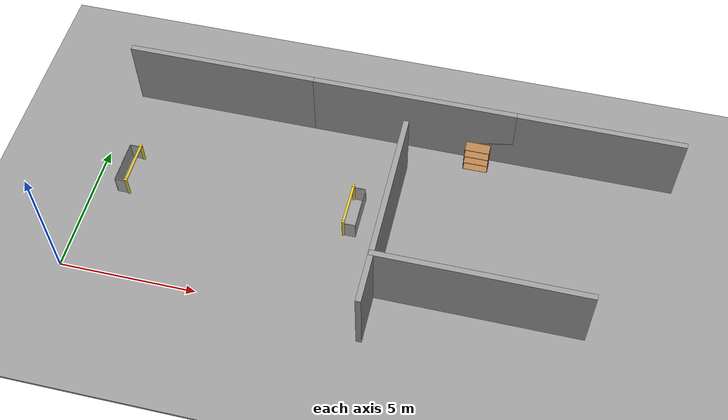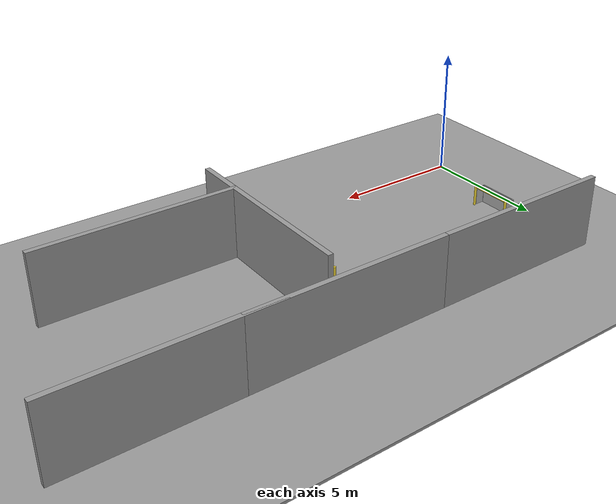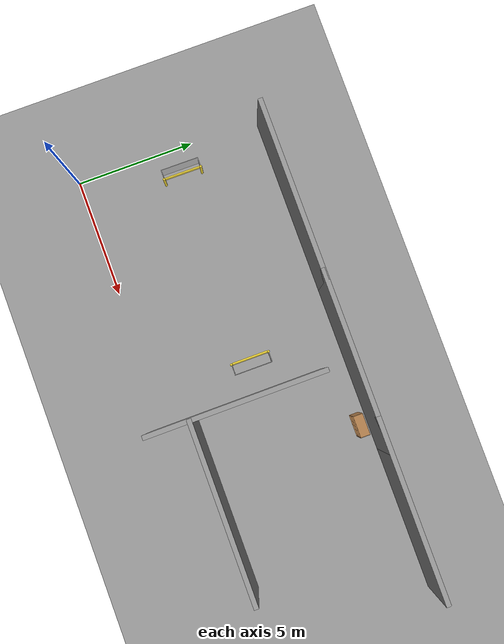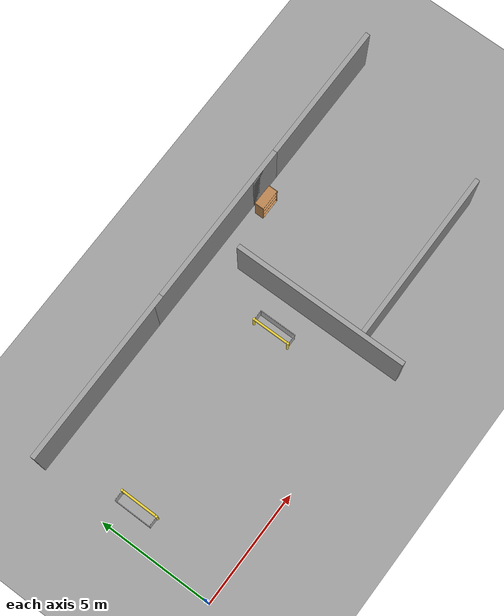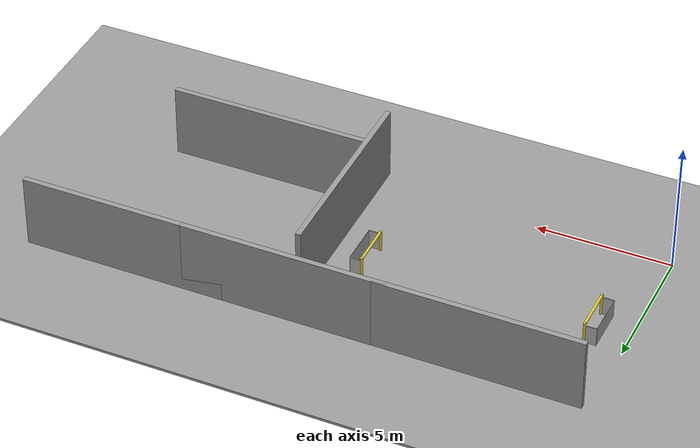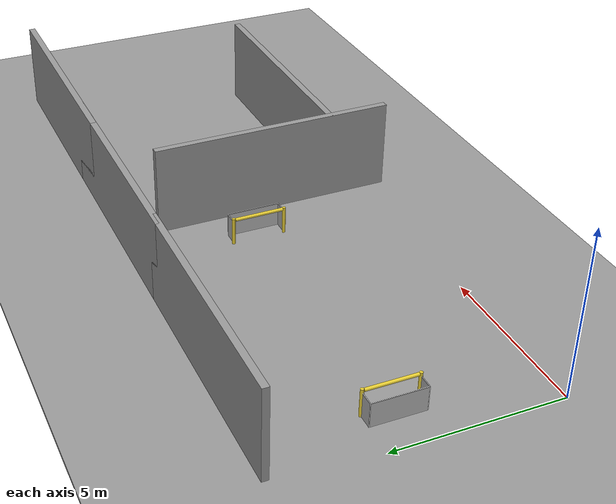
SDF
<sdf version="1.7">
 <world name="default">
  <light name="sun" type="directional">
   <pose>0 0 10 0 -0 0</pose>
   <diffuse>0.8 0.8 0.8 1</diffuse>
   <specular>0.2 0.2 0.2 1</specular>
   <attenuation>
    <range>1000</range>
    <constant>0.9</constant>
    <linear>0.01</linear>
    <quadratic>0.001</quadratic>
   </attenuation>
   <direction>-0.5 0.1 -0.9</direction>
   <spot><inner_angle>0</inner_angle><outer_angle>0</outer_angle><falloff>0</falloff></spot>
  </light>
  <model name="ground_plane">
   <static>1</static>
   <link name="link">
    <collision name="collision">
     <geometry><plane><normal>0 0 1</normal><size>100 100</size></plane></geometry>
     <surface><friction><ode><mu>100</mu><mu2>50</mu2></ode></friction></surface>
    </collision>
    <visual name="visual">
     <cast_shadows>0</cast_shadows>
     <geometry><plane><normal>0 0 1</normal><size>100 100</size></plane></geometry>
     <material>
      <script><uri>file://media/materials/scripts/gazebo.material</uri><name>Gazebo/Grey</name></script>
     </material>
    </visual>
   </link>
  </model>
  <gravity>0 0 -9.8</gravity>
  <magnetic_field>6e-06 2.3e-05 -4.2e-05</magnetic_field>
  <atmosphere type="adiabatic"/>
  <physics type="ode">
   <max_step_size>0.001</max_step_size>
   <real_time_factor>1</real_time_factor>
   <real_time_update_rate>1000</real_time_update_rate>
  </physics>
  <scene><ambient>0.4 0.4 0.4 1</ambient><background>0.7 0.7 0.7 1</background><shadows>1</shadows></scene>
  <spherical_coordinates>
   <surface_model>EARTH_WGS84</surface_model>
   <latitude_deg>0</latitude_deg>
   <longitude_deg>0</longitude_deg>
   <elevation>0</elevation>
   <heading_deg>0</heading_deg>
  </spherical_coordinates>
  <model name="grey_wall">
   <static>1</static>
   <link name="link">
    <pose>0 0 1.4 0 -0 0</pose>
    <collision name="collision"><geometry><box><size>7.5 0.2 2.8</size></box></geometry></collision>
    <visual name="visual">
     <cast_shadows>0</cast_shadows>
     <geometry><box><size>7.5 0.2 2.8</size></box></geometry>
     <material>
      <script>
       <uri>model://grey_wall/materials/scripts</uri>
       <uri>model://grey_wall/materials/textures</uri>
       <name>vrc/grey_wall</name>
      </script>
     </material>
    </visual>
   </link>
   <pose>4 8 0 0 -0 0</pose>
  </model>
  <model name="grey_wall_0">
   <static>1</static>
   <link name="link">
    <pose>0 0 1.4 0 -0 0</pose>
    <collision name="collision"><geometry><box><size>7.5 0.2 2.8</size></box></geometry></collision>
    <visual name="visual">
     <cast_shadows>0</cast_shadows>
     <geometry><box><size>7.5 0.2 2.8</size></box></geometry>
     <material>
      <script>
       <uri>model://grey_wall/materials/scripts</uri>
       <uri>model://grey_wall/materials/textures</uri>
       <name>vrc/grey_wall</name>
      </script>
     </material>
    </visual>
   </link>
   <pose>11 8 0 0 -0 0</pose>
  </model>
  <model name="grey_wall_1">
   <static>1</static>
   <link name="link">
    <pose>0 0 1.4 0 -0 0</pose>
    <collision name="collision"><geometry><box><size>7.5 0.2 2.8</size></box></geometry></collision>
    <visual name="visual">
     <cast_shadows>0</cast_shadows>
     <geometry><box><size>7.5 0.2 2.8</size></box></geometry>
     <material>
      <script>
       <uri>model://grey_wall/materials/scripts</uri>
       <uri>model://grey_wall/materials/textures</uri>
       <name>vrc/grey_wall</name>
      </script>
     </material>
    </visual>
   </link>
   <pose>17 8 0 0 -0 0</pose>
  </model>
  <model name="bookshelf">
   <static>1</static>
   <link name="link">
    <inertial><mass>1</mass></inertial>
    <collision name="back">
     <pose>0 0.005 0.6 0 -0 0</pose>
     <geometry><box><size>0.9 0.01 1.2</size></box></geometry>
    </collision>
    <visual name="visual1">
     <pose>0 0.005 0.6 0 -0 0</pose>
     <geometry><box><size>0.9 0.01 1.2</size></box></geometry>
     <material>
      <script><uri>file://media/materials/scripts/gazebo.material</uri><name>Gazebo/Wood</name></script>
     </material>
    </visual>
    <collision name="left_side">
     <pose>0.45 -0.195 0.6 0 -0 0</pose>
     <geometry><box><size>0.02 0.4 1.2</size></box></geometry>
    </collision>
    <visual name="visual2">
     <pose>0.45 -0.195 0.6 0 -0 0</pose>
     <geometry><box><size>0.02 0.4 1.2</size></box></geometry>
     <material>
      <script><uri>file://media/materials/scripts/gazebo.material</uri><name>Gazebo/Wood</name></script>
     </material>
    </visual>
    <collision name="right_side">
     <pose>-0.45 -0.195 0.6 0 -0 0</pose>
     <geometry><box><size>0.02 0.4 1.2</size></box></geometry>
    </collision>
    <visual name="visual3">
     <pose>-0.45 -0.195 0.6 0 -0 0</pose>
     <geometry><box><size>0.02 0.4 1.2</size></box></geometry>
     <material>
      <script><uri>file://media/materials/scripts/gazebo.material</uri><name>Gazebo/Wood</name></script>
     </material>
    </visual>
    <collision name="bottom">
     <pose>0 -0.195 0.03 0 -0 0</pose>
     <geometry><box><size>0.88 0.4 0.06</size></box></geometry>
    </collision>
    <visual name="visual4">
     <pose>0 -0.195 0.03 0 -0 0</pose>
     <geometry><box><size>0.88 0.4 0.06</size></box></geometry>
     <material>
      <script><uri>file://media/materials/scripts/gazebo.material</uri><name>Gazebo/Wood</name></script>
     </material>
    </visual>
    <collision name="top">
     <pose>0 -0.195 1.19 0 -0 0</pose>
     <geometry><box><size>0.88 0.4 0.02</size></box></geometry>
    </collision>
    <visual name="visual5">
     <pose>0 -0.195 1.19 0 -0 0</pose>
     <geometry><box><size>0.88 0.4 0.02</size></box></geometry>
     <material>
      <script><uri>file://media/materials/scripts/gazebo.material</uri><name>Gazebo/Wood</name></script>
     </material>
    </visual>
    <collision name="low_shelf">
     <pose>0 -0.195 0.43 0 -0 0</pose>
     <geometry><box><size>0.88 0.4 0.02</size></box></geometry>
    </collision>
    <visual name="visual6">
     <pose>0 -0.195 0.43 0 -0 0</pose>
     <geometry><box><size>0.88 0.4 0.02</size></box></geometry>
     <material>
      <script><uri>file://media/materials/scripts/gazebo.material</uri><name>Gazebo/Wood</name></script>
     </material>
    </visual>
    <collision name="high_shelf">
     <pose>0 -0.195 0.8 0 -0 0</pose>
     <geometry><box><size>0.88 0.4 0.02</size></box></geometry>
    </collision>
    <visual name="visual7">
     <pose>0 -0.195 0.8 0 -0 0</pose>
     <geometry><box><size>0.88 0.4 0.02</size></box></geometry>
     <material>
      <script><uri>file://media/materials/scripts/gazebo.material</uri><name>Gazebo/Wood</name></script>
     </material>
    </visual>
   </link>
   <pose>13.528 7.68784 0 0 -0 0</pose>
  </model>
  <model name="grey_wall_2">
   <static>1</static>
   <link name="link">
    <pose>0 0 1.4 0 -0 0</pose>
    <collision name="collision"><geometry><box><size>7.5 0.2 2.8</size></box></geometry></collision>
    <visual name="visual">
     <cast_shadows>0</cast_shadows>
     <geometry><box><size>7.5 0.2 2.8</size></box></geometry>
     <material>
      <script>
       <uri>model://grey_wall/materials/scripts</uri>
       <uri>model://grey_wall/materials/textures</uri>
       <name>vrc/grey_wall</name>
      </script>
     </material>
    </visual>
   </link>
   <pose>10.966 3.11934 0 0 0 -1.56709</pose>
  </model>
  <model name="grey_wall_3">
   <static>1</static>
   <link name="link">
    <pose>0 0 1.4 0 -0 0</pose>
    <collision name="collision"><geometry><box><size>7.5 0.2 2.8</size></box></geometry></collision>
    <visual name="visual">
     <cast_shadows>0</cast_shadows>
     <geometry><box><size>7.5 0.2 2.8</size></box></geometry>
     <material>
      <script>
       <uri>model://grey_wall/materials/scripts</uri>
       <uri>model://grey_wall/materials/textures</uri>
       <name>vrc/grey_wall</name>
      </script>
     </material>
    </visual>
   </link>
   <pose>14.6449 1.24791 0 0 -0 0</pose>
  </model>
  <model name="RoboCup 2014 SPL Goal">
   <static>1</static>
   <link name="left_post">
    <pose>0 0.8 0.45 0 -0 0</pose>
    <collision name="collision">
     <geometry><cylinder><radius>0.05</radius><length>0.9</length></cylinder></geometry>
    </collision>
    <visual name="visual">
     <geometry><cylinder><radius>0.05</radius><length>0.9</length></cylinder></geometry>
     <material>
      <script><uri>file://media/materials/scripts/gazebo.material</uri><name>Gazebo/ZincYellow</name></script>
     </material>
    </visual>
   </link>
   <link name="left_support_horiz_lower">
    <pose>0.24 0.8 0.01 0 -0 0</pose>
    <collision name="collision"><geometry><box><size>0.38 0.02 0.02</size></box></geometry></collision>
    <visual name="visual">
     <geometry><box><size>0.38 0.02 0.02</size></box></geometry>
     <material>
      <script><uri>file://media/materials/scripts/gazebo.material</uri><name>Gazebo/White</name></script>
     </material>
    </visual>
   </link>
   <link name="left_support_horiz_upper">
    <pose>0.24 0.8 0.79 0 -0 0</pose>
    <collision name="collision"><geometry><box><size>0.38 0.02 0.02</size></box></geometry></collision>
    <visual name="visual">
     <geometry><box><size>0.38 0.02 0.02</size></box></geometry>
     <material>
      <script><uri>file://media/materials/scripts/gazebo.material</uri><name>Gazebo/White</name></script>
     </material>
    </visual>
   </link>
   <link name="left_support_vertical">
    <pose>0.44 0.8 0.4 3.14159 1.57079 3.14159</pose>
    <collision name="collision"><geometry><box><size>0.8 0.02 0.02</size></box></geometry></collision>
    <visual name="visual">
     <geometry><box><size>0.8 0.02 0.02</size></box></geometry>
     <material>
      <script><uri>file://media/materials/scripts/gazebo.material</uri><name>Gazebo/White</name></script>
     </material>
    </visual>
   </link>
   <link name="right_support_horiz_lower">
    <pose>0.24 -0.8 0.01 0 -0 0</pose>
    <collision name="collision"><geometry><box><size>0.38 0.02 0.02</size></box></geometry></collision>
    <visual name="visual">
     <geometry><box><size>0.38 0.02 0.02</size></box></geometry>
     <material>
      <script><uri>file://media/materials/scripts/gazebo.material</uri><name>Gazebo/White</name></script>
     </material>
    </visual>
   </link>
   <link name="right_support_horiz_upper">
    <pose>0.24 -0.8 0.79 0 -0 0</pose>
    <collision name="collision"><geometry><box><size>0.38 0.02 0.02</size></box></geometry></collision>
    <visual name="visual">
     <geometry><box><size>0.38 0.02 0.02</size></box></geometry>
     <material>
      <script><uri>file://media/materials/scripts/gazebo.material</uri><name>Gazebo/White</name></script>
     </material>
    </visual>
   </link>
   <link name="right_support_vertical">
    <pose>0.44 -0.8 0.4 3.14159 1.57079 3.14159</pose>
    <collision name="collision"><geometry><box><size>0.8 0.02 0.02</size></box></geometry></collision>
    <visual name="visual">
     <geometry><box><size>0.8 0.02 0.02</size></box></geometry>
     <material>
      <script><uri>file://media/materials/scripts/gazebo.material</uri><name>Gazebo/White</name></script>
     </material>
    </visual>
   </link>
   <link name="center_support_horiz_lower">
    <pose>0.44 0 0.01 3.14159 1.57079 3.14159</pose>
    <collision name="collision"><geometry><box><size>0.02 1.58 0.02</size></box></geometry></collision>
    <visual name="visual">
     <geometry><box><size>0.02 1.58 0.02</size></box></geometry>
     <material>
      <script><uri>file://media/materials/scripts/gazebo.material</uri><name>Gazebo/White</name></script>
     </material>
    </visual>
   </link>
   <link name="center_support_horiz_upper">
    <pose>0.44 0 0.79 3.14159 1.57079 3.14159</pose>
    <collision name="collision"><geometry><box><size>0.02 1.58 0.02</size></box></geometry></collision>
    <visual name="visual">
     <geometry><box><size>0.02 1.58 0.02</size></box></geometry>
     <material>
      <script><uri>file://media/materials/scripts/gazebo.material</uri><name>Gazebo/White</name></script>
     </material>
    </visual>
   </link>
   <link name="right_post">
    <pose>0 -0.8 0.45 0 -0 0</pose>
    <collision name="collision">
     <geometry><cylinder><radius>0.05</radius><length>0.9</length></cylinder></geometry>
    </collision>
    <visual name="visual">
     <geometry><cylinder><radius>0.05</radius><length>0.9</length></cylinder></geometry>
     <material>
      <script><uri>file://media/materials/scripts/gazebo.material</uri><name>Gazebo/ZincYellow</name></script>
     </material>
    </visual>
   </link>
   <link name="crossbar">
    <pose>0 0 0.85 1.57 1.57 0</pose>
    <collision name="collision">
     <geometry><cylinder><radius>0.05</radius><length>1.5</length></cylinder></geometry>
    </collision>
    <visual name="visual">
     <geometry><cylinder><radius>0.05</radius><length>1.5</length></cylinder></geometry>
     <material>
      <script><uri>file://media/materials/scripts/gazebo.material</uri><name>Gazebo/ZincYellow</name></script>
     </material>
    </visual>
   </link>
   <link name="center_net">
    <pose>0.44 0 0.4 0 -0 0</pose>
    <collision name="collision"><geometry><box><size>0.01 1.6 0.8</size></box></geometry></collision>
    <visual name="visual">
     <geometry><box><size>0.01 1.6 0.8</size></box></geometry>
     <material>
      <script>
       <uri>model://robocup09_spl_field/materials/scripts/</uri>
       <uri>model://robocup09_spl_field/materials/textures/</uri>
       <name>RoboCup/Net</name>
      </script>
     </material>
    </visual>
   </link>
   <link name="left_net">
    <pose>0.24 0.8 0.4 0 -0 0</pose>
    <collision name="collision"><geometry><box><size>0.38 0.01 0.76</size></box></geometry></collision>
    <visual name="visual">
     <geometry><box><size>0.38 0.01 0.76</size></box></geometry>
     <material>
      <script>
       <uri>model://robocup09_spl_field/materials/scripts/</uri>
       <uri>model://robocup09_spl_field/materials/textures/</uri>
       <name>RoboCup/Net</name>
      </script>
     </material>
    </visual>
   </link>
   <link name="right_net">
    <pose>0.24 -0.8 0.4 0 -0 0</pose>
    <collision name="collision"><geometry><box><size>0.38 0.01 0.76</size></box></geometry></collision>
    <visual name="visual">
     <geometry><box><size>0.38 0.01 0.76</size></box></geometry>
     <material>
      <script>
       <uri>model://robocup09_spl_field/materials/scripts/</uri>
       <uri>model://robocup09_spl_field/materials/textures/</uri>
       <name>RoboCup/Net</name>
      </script>
     </material>
    </visual>
   </link>
   <pose>9.44829 4.22855 0 0 -0 0</pose>
  </model>
  <model name="RoboCup 2014 SPL Goal_0">
   <static>1</static>
   <link name="left_post">
    <pose>0 0.8 0.45 0 -0 0</pose>
    <collision name="collision">
     <geometry><cylinder><radius>0.05</radius><length>0.9</length></cylinder></geometry>
    </collision>
    <visual name="visual">
     <geometry><cylinder><radius>0.05</radius><length>0.9</length></cylinder></geometry>
     <material>
      <script><uri>file://media/materials/scripts/gazebo.material</uri><name>Gazebo/ZincYellow</name></script>
     </material>
    </visual>
   </link>
   <link name="left_support_horiz_lower">
    <pose>0.24 0.8 0.01 0 -0 0</pose>
    <collision name="collision"><geometry><box><size>0.38 0.02 0.02</size></box></geometry></collision>
    <visual name="visual">
     <geometry><box><size>0.38 0.02 0.02</size></box></geometry>
     <material>
      <script><uri>file://media/materials/scripts/gazebo.material</uri><name>Gazebo/White</name></script>
     </material>
    </visual>
   </link>
   <link name="left_support_horiz_upper">
    <pose>0.24 0.8 0.79 0 -0 0</pose>
    <collision name="collision"><geometry><box><size>0.38 0.02 0.02</size></box></geometry></collision>
    <visual name="visual">
     <geometry><box><size>0.38 0.02 0.02</size></box></geometry>
     <material>
      <script><uri>file://media/materials/scripts/gazebo.material</uri><name>Gazebo/White</name></script>
     </material>
    </visual>
   </link>
   <link name="left_support_vertical">
    <pose>0.44 0.8 0.4 3.14159 1.57079 3.14159</pose>
    <collision name="collision"><geometry><box><size>0.8 0.02 0.02</size></box></geometry></collision>
    <visual name="visual">
     <geometry><box><size>0.8 0.02 0.02</size></box></geometry>
     <material>
      <script><uri>file://media/materials/scripts/gazebo.material</uri><name>Gazebo/White</name></script>
     </material>
    </visual>
   </link>
   <link name="right_support_horiz_lower">
    <pose>0.24 -0.8 0.01 0 -0 0</pose>
    <collision name="collision"><geometry><box><size>0.38 0.02 0.02</size></box></geometry></collision>
    <visual name="visual">
     <geometry><box><size>0.38 0.02 0.02</size></box></geometry>
     <material>
      <script><uri>file://media/materials/scripts/gazebo.material</uri><name>Gazebo/White</name></script>
     </material>
    </visual>
   </link>
   <link name="right_support_horiz_upper">
    <pose>0.24 -0.8 0.79 0 -0 0</pose>
    <collision name="collision"><geometry><box><size>0.38 0.02 0.02</size></box></geometry></collision>
    <visual name="visual">
     <geometry><box><size>0.38 0.02 0.02</size></box></geometry>
     <material>
      <script><uri>file://media/materials/scripts/gazebo.material</uri><name>Gazebo/White</name></script>
     </material>
    </visual>
   </link>
   <link name="right_support_vertical">
    <pose>0.44 -0.8 0.4 3.14159 1.57079 3.14159</pose>
    <collision name="collision"><geometry><box><size>0.8 0.02 0.02</size></box></geometry></collision>
    <visual name="visual">
     <geometry><box><size>0.8 0.02 0.02</size></box></geometry>
     <material>
      <script><uri>file://media/materials/scripts/gazebo.material</uri><name>Gazebo/White</name></script>
     </material>
    </visual>
   </link>
   <link name="center_support_horiz_lower">
    <pose>0.44 0 0.01 3.14159 1.57079 3.14159</pose>
    <collision name="collision"><geometry><box><size>0.02 1.58 0.02</size></box></geometry></collision>
    <visual name="visual">
     <geometry><box><size>0.02 1.58 0.02</size></box></geometry>
     <material>
      <script><uri>file://media/materials/scripts/gazebo.material</uri><name>Gazebo/White</name></script>
     </material>
    </visual>
   </link>
   <link name="center_support_horiz_upper">
    <pose>0.44 0 0.79 3.14159 1.57079 3.14159</pose>
    <collision name="collision"><geometry><box><size>0.02 1.58 0.02</size></box></geometry></collision>
    <visual name="visual">
     <geometry><box><size>0.02 1.58 0.02</size></box></geometry>
     <material>
      <script><uri>file://media/materials/scripts/gazebo.material</uri><name>Gazebo/White</name></script>
     </material>
    </visual>
   </link>
   <link name="right_post">
    <pose>0 -0.8 0.45 0 -0 0</pose>
    <collision name="collision">
     <geometry><cylinder><radius>0.05</radius><length>0.9</length></cylinder></geometry>
    </collision>
    <visual name="visual">
     <geometry><cylinder><radius>0.05</radius><length>0.9</length></cylinder></geometry>
     <material>
      <script><uri>file://media/materials/scripts/gazebo.material</uri><name>Gazebo/ZincYellow</name></script>
     </material>
    </visual>
   </link>
   <link name="crossbar">
    <pose>0 0 0.85 1.57 1.57 0</pose>
    <collision name="collision">
     <geometry><cylinder><radius>0.05</radius><length>1.5</length></cylinder></geometry>
    </collision>
    <visual name="visual">
     <geometry><cylinder><radius>0.05</radius><length>1.5</length></cylinder></geometry>
     <material>
      <script><uri>file://media/materials/scripts/gazebo.material</uri><name>Gazebo/ZincYellow</name></script>
     </material>
    </visual>
   </link>
   <link name="center_net">
    <pose>0.44 0 0.4 0 -0 0</pose>
    <collision name="collision"><geometry><box><size>0.01 1.6 0.8</size></box></geometry></collision>
    <visual name="visual">
     <geometry><box><size>0.01 1.6 0.8</size></box></geometry>
     <material>
      <script>
       <uri>model://robocup09_spl_field/materials/scripts/</uri>
       <uri>model://robocup09_spl_field/materials/textures/</uri>
       <name>RoboCup/Net</name>
      </script>
     </material>
    </visual>
   </link>
   <link name="left_net">
    <pose>0.24 0.8 0.4 0 -0 0</pose>
    <collision name="collision"><geometry><box><size>0.38 0.01 0.76</size></box></geometry></collision>
    <visual name="visual">
     <geometry><box><size>0.38 0.01 0.76</size></box></geometry>
     <material>
      <script>
       <uri>model://robocup09_spl_field/materials/scripts/</uri>
       <uri>model://robocup09_spl_field/materials/textures/</uri>
       <name>RoboCup/Net</name>
      </script>
     </material>
    </visual>
   </link>
   <link name="right_net">
    <pose>0.24 -0.8 0.4 0 -0 0</pose>
    <collision name="collision"><geometry><box><size>0.38 0.01 0.76</size></box></geometry></collision>
    <visual name="visual">
     <geometry><box><size>0.38 0.01 0.76</size></box></geometry>
     <material>
      <script>
       <uri>model://robocup09_spl_field/materials/scripts/</uri>
       <uri>model://robocup09_spl_field/materials/textures/</uri>
       <name>RoboCup/Net</name>
      </script>
     </material>
    </visual>
   </link>
   <pose>1.34567 4.22526 0 0 -0 3.13673</pose>
  </model>
  <model name="ground_plane_0">
   <static>1</static>
   <link name="link">
    <collision name="collision">
     <geometry><plane><normal>0 0 1</normal><size>100 100</size></plane></geometry>
     <surface><friction><ode><mu>100</mu><mu2>50</mu2></ode></friction></surface>
    </collision>
    <visual name="visual">
     <cast_shadows>0</cast_shadows>
     <geometry><plane><normal>0 0 1</normal><size>100 100</size></plane></geometry>
     <material>
      <script><uri>file://media/materials/scripts/gazebo.material</uri><name>Gazebo/Grey</name></script>
     </material>
    </visual>
   </link>
   <pose>-3.74734 -17.9145 0 0 -0 0</pose>
  </model>
 </world>
</sdf>
